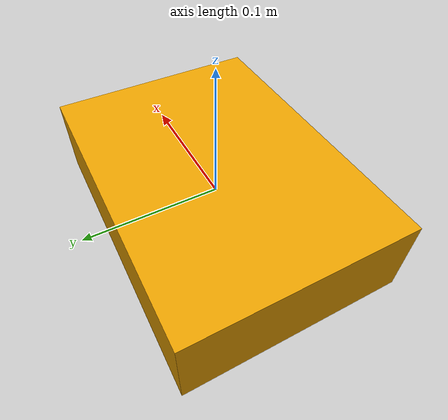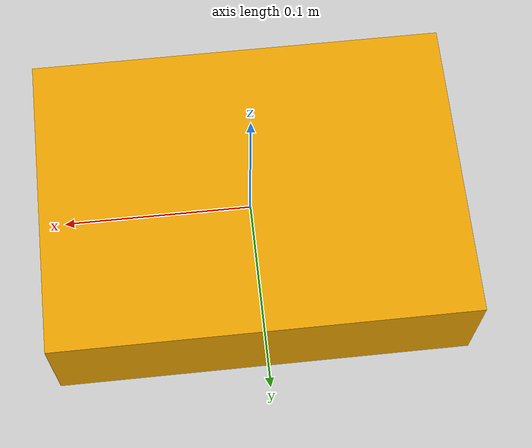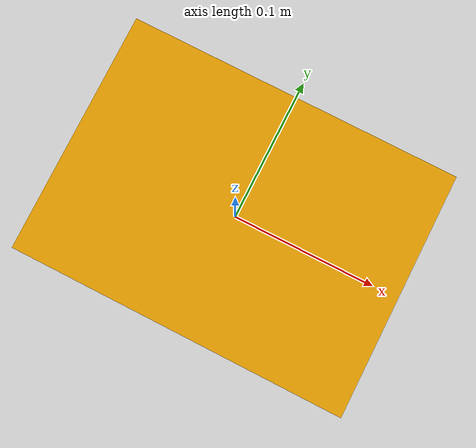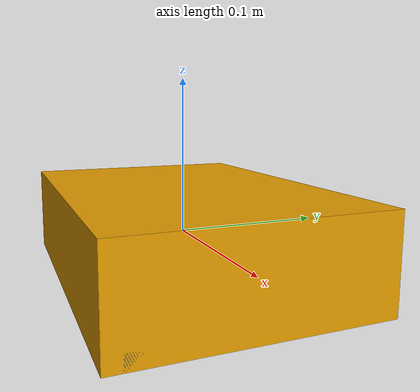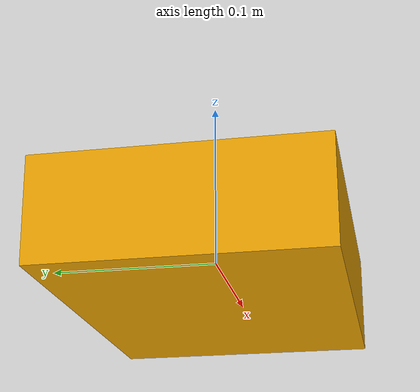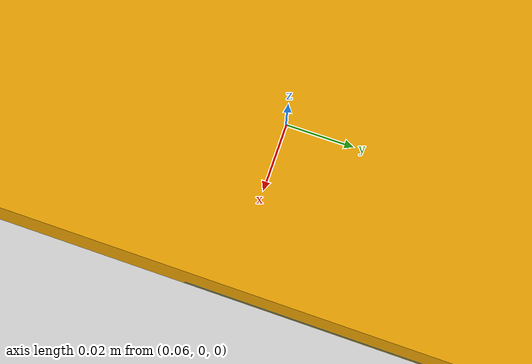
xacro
<?xml version="1.0"?>
<robot xmlns:xacro="http://www.ros.org/wiki/xacro" name="line_follower_v2_v3">
  <!-- V2-V3: 8-Channel IR Ground Array + IMU + Wheel Encoders -->
  <link name="base_link">
    <visual><geometry><box size="0.22 0.16 0.06"/></geometry></visual>
    <inertial><mass value="1.2"/><inertia ixx="0.003" ixy="0" ixz="0" iyy="0.005" iyz="0" izz="0.007"/></inertial>
  </link>

  <!-- 8-Channel IR Sensor Array Bar -->
  <link name="ir_array_bar">
    <visual><geometry><box size="0.02 0.14 0.008"/></geometry></visual>
  </link>
  <joint name="ir_array_joint" type="fixed">
    <parent link="base_link"/>
    <child link="ir_array_bar"/>
    <origin xyz="0.10 0 -0.025" rpy="0 0 0"/>
  </joint>

  <!-- 6-Axis IMU -->
  <link name="imu_link"/>
  <joint name="imu_joint" type="fixed">
    <parent link="base_link"/>
    <child link="imu_link"/>
    <origin xyz="0 0 0.02" rpy="0 0 0"/>
  </joint>
</robot>
